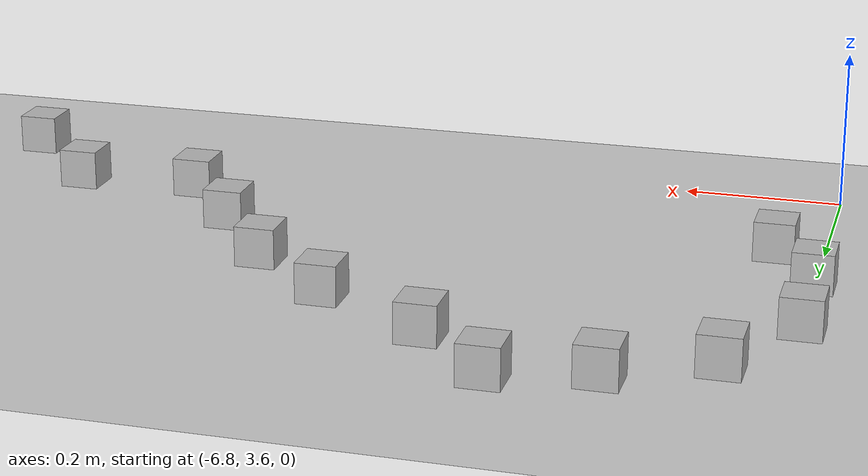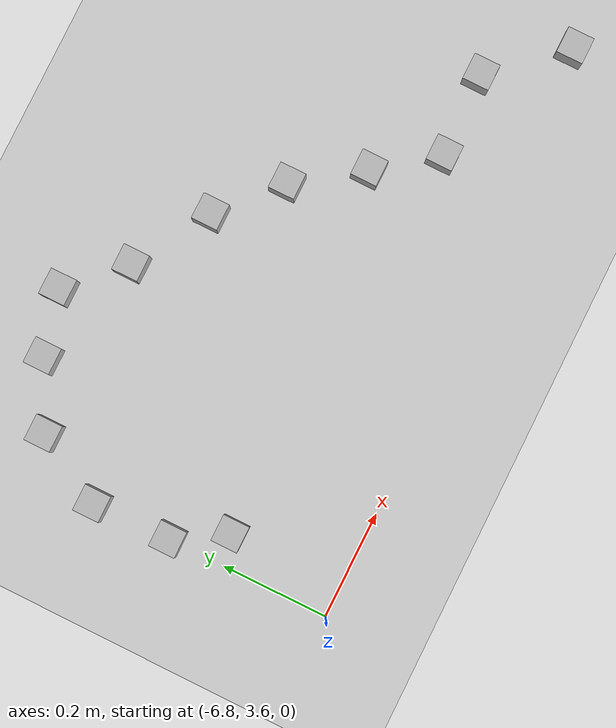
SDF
<sdf version="1.4">
 <world name="default">
  <model name="ground_plane">
   <static>1</static>
   <link name="link">
    <collision name="collision">
     <geometry><plane><normal>0 0 1</normal><size>100 100</size></plane></geometry>
     <surface><friction><ode><mu>100</mu><mu2>50</mu2></ode></friction></surface>
    </collision>
    <visual name="visual">
     <cast_shadows>0</cast_shadows>
     <geometry><plane><normal>0 0 1</normal><size>100 100</size></plane></geometry>
     <material>
      <script><uri>file://media/materials/scripts/gazebo.material</uri><name>Gazebo/Grey</name></script>
     </material>
    </visual>
    <velocity_decay><linear>0</linear><angular>0</angular></velocity_decay>
   </link>
  </model>
  <model name="at16">
   <static>0</static>
   <link name="link">
    <inertial>
     <mass>0.01</mass>
     <inertia><ixx>4e-05</ixx><ixy>0</ixy><ixz>0</ixz><iyy>4e-05</iyy><iyz>0</iyz><izz>4e-05</izz></inertia>
    </inertial>
    <visual name="visual">
     <geometry><box><size>0.05 0.05 0.05</size></box></geometry>
     <material>
      <script>
       <uri>model://at0/materials/scripts</uri>
       <uri>model://at0/materials/textures</uri>
       <name>at0/Diffuse</name>
      </script>
     </material>
    </visual>
    <collision name="collision">
     <geometry><box><size>0.05 0.05 0.05</size></box></geometry>
     <surface><friction><ode><mu>0.8</mu><mu2>0.7</mu2></ode></friction></surface>
    </collision>
    <velocity_decay><linear>0</linear><angular>0</angular></velocity_decay>
   </link>
   <pose>-5.82072 3.77826 0.025 0 -0 0</pose>
  </model>
  <model name="at64">
   <static>0</static>
   <link name="link">
    <inertial>
     <mass>0.01</mass>
     <inertia><ixx>4e-05</ixx><ixy>0</ixy><ixz>0</ixz><iyy>4e-05</iyy><iyz>0</iyz><izz>4e-05</izz></inertia>
    </inertial>
    <visual name="visual">
     <geometry><box><size>0.05 0.05 0.05</size></box></geometry>
     <material>
      <script>
       <uri>model://at0/materials/scripts</uri>
       <uri>model://at0/materials/textures</uri>
       <name>at0/Diffuse</name>
      </script>
     </material>
    </visual>
    <collision name="collision">
     <geometry><box><size>0.05 0.05 0.05</size></box></geometry>
     <surface><friction><ode><mu>0.8</mu><mu2>0.7</mu2></ode></friction></surface>
    </collision>
    <velocity_decay><linear>0</linear><angular>0</angular></velocity_decay>
   </link>
   <pose>-5.97854 3.773 0.025 0 -0 0</pose>
  </model>
  <model name="at65">
   <static>0</static>
   <link name="link">
    <inertial>
     <mass>0.01</mass>
     <inertia><ixx>4e-05</ixx><ixy>0</ixy><ixz>0</ixz><iyy>4e-05</iyy><iyz>0</iyz><izz>4e-05</izz></inertia>
    </inertial>
    <visual name="visual">
     <geometry><box><size>0.05 0.05 0.05</size></box></geometry>
     <material>
      <script>
       <uri>model://at0/materials/scripts</uri>
       <uri>model://at0/materials/textures</uri>
       <name>at0/Diffuse</name>
      </script>
     </material>
    </visual>
    <collision name="collision">
     <geometry><box><size>0.05 0.05 0.05</size></box></geometry>
     <surface><friction><ode><mu>0.8</mu><mu2>0.7</mu2></ode></friction></surface>
    </collision>
    <velocity_decay><linear>0</linear><angular>0</angular></velocity_decay>
   </link>
   <pose>-6.0613 3.87997 0.025 0 -0 0</pose>
  </model>
  <model name="at66">
   <static>0</static>
   <link name="link">
    <inertial>
     <mass>0.01</mass>
     <inertia><ixx>4e-05</ixx><ixy>0</ixy><ixz>0</ixz><iyy>4e-05</iyy><iyz>0</iyz><izz>4e-05</izz></inertia>
    </inertial>
    <visual name="visual">
     <geometry><box><size>0.05 0.05 0.05</size></box></geometry>
     <material>
      <script>
       <uri>model://at0/materials/scripts</uri>
       <uri>model://at0/materials/textures</uri>
       <name>at0/Diffuse</name>
      </script>
     </material>
    </visual>
    <collision name="collision">
     <geometry><box><size>0.05 0.05 0.05</size></box></geometry>
     <surface><friction><ode><mu>0.8</mu><mu2>0.7</mu2></ode></friction></surface>
    </collision>
    <velocity_decay><linear>0</linear><angular>0</angular></velocity_decay>
   </link>
   <pose>-6.14632 3.99918 0.025 0 -0 0</pose>
  </model>
  <model name="at67">
   <static>0</static>
   <link name="link">
    <inertial>
     <mass>0.01</mass>
     <inertia><ixx>4e-05</ixx><ixy>0</ixy><ixz>0</ixz><iyy>4e-05</iyy><iyz>0</iyz><izz>4e-05</izz></inertia>
    </inertial>
    <visual name="visual">
     <geometry><box><size>0.05 0.05 0.05</size></box></geometry>
     <material>
      <script>
       <uri>model://at0/materials/scripts</uri>
       <uri>model://at0/materials/textures</uri>
       <name>at0/Diffuse</name>
      </script>
     </material>
    </visual>
    <collision name="collision">
     <geometry><box><size>0.05 0.05 0.05</size></box></geometry>
     <surface><friction><ode><mu>0.8</mu><mu2>0.7</mu2></ode></friction></surface>
    </collision>
    <velocity_decay><linear>0</linear><angular>0</angular></velocity_decay>
   </link>
   <pose>-6.2549 4.09558 0.025 0 -0 0</pose>
  </model>
  <model name="at68">
   <static>0</static>
   <link name="link">
    <inertial>
     <mass>0.01</mass>
     <inertia><ixx>4e-05</ixx><ixy>0</ixy><ixz>0</ixz><iyy>4e-05</iyy><iyz>0</iyz><izz>4e-05</izz></inertia>
    </inertial>
    <visual name="visual">
     <geometry><box><size>0.05 0.05 0.05</size></box></geometry>
     <material>
      <script>
       <uri>model://at0/materials/scripts</uri>
       <uri>model://at0/materials/textures</uri>
       <name>at0/Diffuse</name>
      </script>
     </material>
    </visual>
    <collision name="collision">
     <geometry><box><size>0.05 0.05 0.05</size></box></geometry>
     <surface><friction><ode><mu>0.8</mu><mu2>0.7</mu2></ode></friction></surface>
    </collision>
    <velocity_decay><linear>0</linear><angular>0</angular></velocity_decay>
   </link>
   <pose>-6.79826 3.90611 0.025 0 -0 0</pose>
  </model>
  <model name="at75">
   <static>0</static>
   <link name="link">
    <inertial>
     <mass>0.01</mass>
     <inertia><ixx>4e-05</ixx><ixy>0</ixy><ixz>0</ixz><iyy>4e-05</iyy><iyz>0</iyz><izz>4e-05</izz></inertia>
    </inertial>
    <visual name="visual">
     <geometry><box><size>0.05 0.05 0.05</size></box></geometry>
     <material>
      <script>
       <uri>model://at0/materials/scripts</uri>
       <uri>model://at0/materials/textures</uri>
       <name>at0/Diffuse</name>
      </script>
     </material>
    </visual>
    <collision name="collision">
     <geometry><box><size>0.05 0.05 0.05</size></box></geometry>
     <surface><friction><ode><mu>0.8</mu><mu2>0.7</mu2></ode></friction></surface>
    </collision>
    <velocity_decay><linear>0</linear><angular>0</angular></velocity_decay>
   </link>
   <pose>-6.39744 4.18031 0.025 0 -0 0</pose>
  </model>
  <model name="at76">
   <static>0</static>
   <link name="link">
    <inertial>
     <mass>0.01</mass>
     <inertia><ixx>4e-05</ixx><ixy>0</ixy><ixz>0</ixz><iyy>4e-05</iyy><iyz>0</iyz><izz>4e-05</izz></inertia>
    </inertial>
    <visual name="visual">
     <geometry><box><size>0.05 0.05 0.05</size></box></geometry>
     <material>
      <script>
       <uri>model://at0/materials/scripts</uri>
       <uri>model://at0/materials/textures</uri>
       <name>at0/Diffuse</name>
      </script>
     </material>
    </visual>
    <collision name="collision">
     <geometry><box><size>0.05 0.05 0.05</size></box></geometry>
     <surface><friction><ode><mu>0.8</mu><mu2>0.7</mu2></ode></friction></surface>
    </collision>
    <velocity_decay><linear>0</linear><angular>0</angular></velocity_decay>
   </link>
   <pose>-6.74215 3.81331 0.025 0 -0 0</pose>
  </model>
  <model name="at83">
   <static>0</static>
   <link name="link">
    <inertial>
     <mass>0.01</mass>
     <inertia><ixx>4e-05</ixx><ixy>0</ixy><ixz>0</ixz><iyy>4e-05</iyy><iyz>0</iyz><izz>4e-05</izz></inertia>
    </inertial>
    <visual name="visual">
     <geometry><box><size>0.05 0.05 0.05</size></box></geometry>
     <material>
      <script>
       <uri>model://at0/materials/scripts</uri>
       <uri>model://at0/materials/textures</uri>
       <name>at0/Diffuse</name>
      </script>
     </material>
    </visual>
    <collision name="collision">
     <geometry><box><size>0.05 0.05 0.05</size></box></geometry>
     <surface><friction><ode><mu>0.8</mu><mu2>0.7</mu2></ode></friction></surface>
    </collision>
    <velocity_decay><linear>0</linear><angular>0</angular></velocity_decay>
   </link>
   <pose>-6.49209 4.2752 0.025 0 -0 0</pose>
  </model>
  <model name="at84">
   <static>0</static>
   <link name="link">
    <inertial>
     <mass>0.01</mass>
     <inertia><ixx>4e-05</ixx><ixy>0</ixy><ixz>0</ixz><iyy>4e-05</iyy><iyz>0</iyz><izz>4e-05</izz></inertia>
    </inertial>
    <visual name="visual">
     <geometry><box><size>0.05 0.05 0.05</size></box></geometry>
     <material>
      <script>
       <uri>model://at0/materials/scripts</uri>
       <uri>model://at0/materials/textures</uri>
       <name>at0/Diffuse</name>
      </script>
     </material>
    </visual>
    <collision name="collision">
     <geometry><box><size>0.05 0.05 0.05</size></box></geometry>
     <surface><friction><ode><mu>0.8</mu><mu2>0.7</mu2></ode></friction></surface>
    </collision>
    <velocity_decay><linear>0</linear><angular>0</angular></velocity_decay>
   </link>
   <pose>-6.80163 4.05143 0.025 0 -0 0</pose>
  </model>
  <model name="at90">
   <static>0</static>
   <link name="link">
    <inertial>
     <mass>0.01</mass>
     <inertia><ixx>4e-05</ixx><ixy>0</ixy><ixz>0</ixz><iyy>4e-05</iyy><iyz>0</iyz><izz>4e-05</izz></inertia>
    </inertial>
    <visual name="visual">
     <geometry><box><size>0.05 0.05 0.05</size></box></geometry>
     <material>
      <script>
       <uri>model://at0/materials/scripts</uri>
       <uri>model://at0/materials/textures</uri>
       <name>at0/Diffuse</name>
      </script>
     </material>
    </visual>
    <collision name="collision">
     <geometry><box><size>0.05 0.05 0.05</size></box></geometry>
     <surface><friction><ode><mu>0.8</mu><mu2>0.7</mu2></ode></friction></surface>
    </collision>
    <velocity_decay><linear>0</linear><angular>0</angular></velocity_decay>
   </link>
   <pose>-5.70443 3.65036 0.025 0 -0 0</pose>
  </model>
  <model name="at91">
   <static>0</static>
   <link name="link">
    <inertial>
     <mass>0.01</mass>
     <inertia><ixx>4e-05</ixx><ixy>0</ixy><ixz>0</ixz><iyy>4e-05</iyy><iyz>0</iyz><izz>4e-05</izz></inertia>
    </inertial>
    <visual name="visual">
     <geometry><box><size>0.05 0.05 0.05</size></box></geometry>
     <material>
      <script>
       <uri>model://at0/materials/scripts</uri>
       <uri>model://at0/materials/textures</uri>
       <name>at0/Diffuse</name>
      </script>
     </material>
    </visual>
    <collision name="collision">
     <geometry><box><size>0.05 0.05 0.05</size></box></geometry>
     <surface><friction><ode><mu>0.8</mu><mu2>0.7</mu2></ode></friction></surface>
    </collision>
    <velocity_decay><linear>0</linear><angular>0</angular></velocity_decay>
   </link>
   <pose>-6.61118 4.24467 0.025 0 -0 0</pose>
  </model>
  <model name="at92">
   <static>0</static>
   <link name="link">
    <inertial>
     <mass>0.01</mass>
     <inertia><ixx>4e-05</ixx><ixy>0</ixy><ixz>0</ixz><iyy>4e-05</iyy><iyz>0</iyz><izz>4e-05</izz></inertia>
    </inertial>
    <visual name="visual">
     <geometry><box><size>0.05 0.05 0.05</size></box></geometry>
     <material>
      <script>
       <uri>model://at0/materials/scripts</uri>
       <uri>model://at0/materials/textures</uri>
       <name>at0/Diffuse</name>
      </script>
     </material>
    </visual>
    <collision name="collision">
     <geometry><box><size>0.05 0.05 0.05</size></box></geometry>
     <surface><friction><ode><mu>0.8</mu><mu2>0.7</mu2></ode></friction></surface>
    </collision>
    <velocity_decay><linear>0</linear><angular>0</angular></velocity_decay>
   </link>
   <pose>-6.73055 4.18218 0.025 0 -0 0</pose>
  </model>
 </world>
</sdf>
